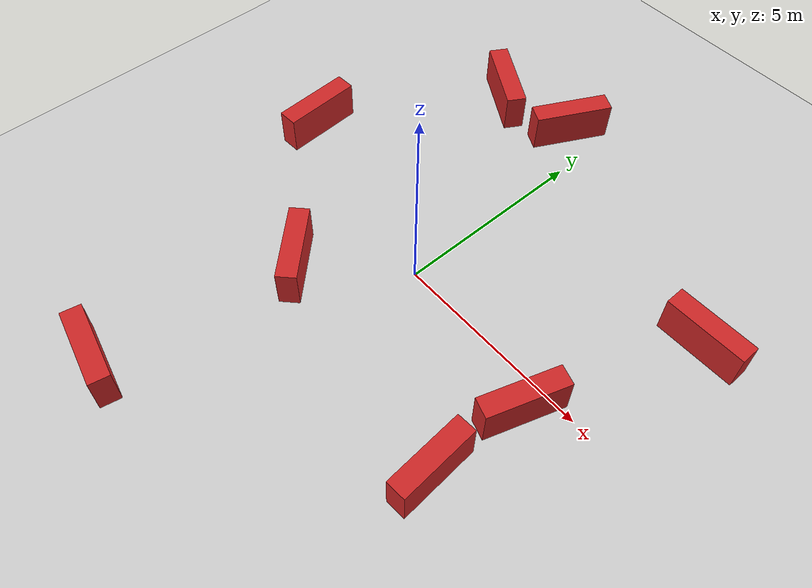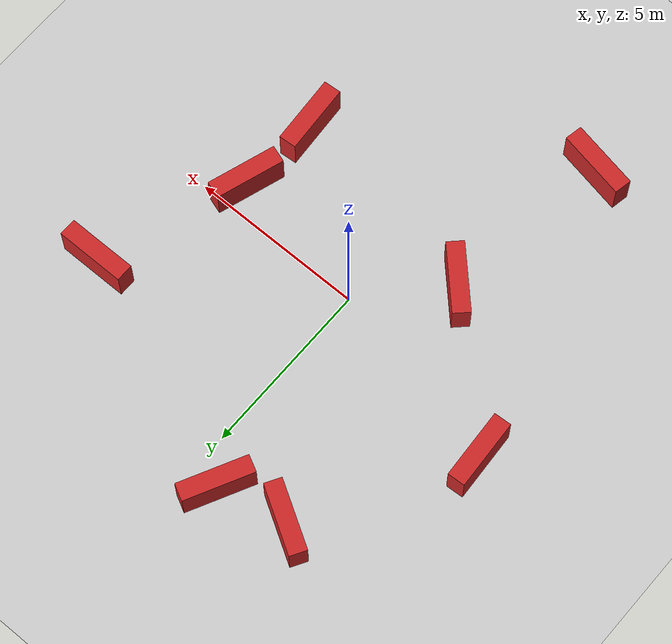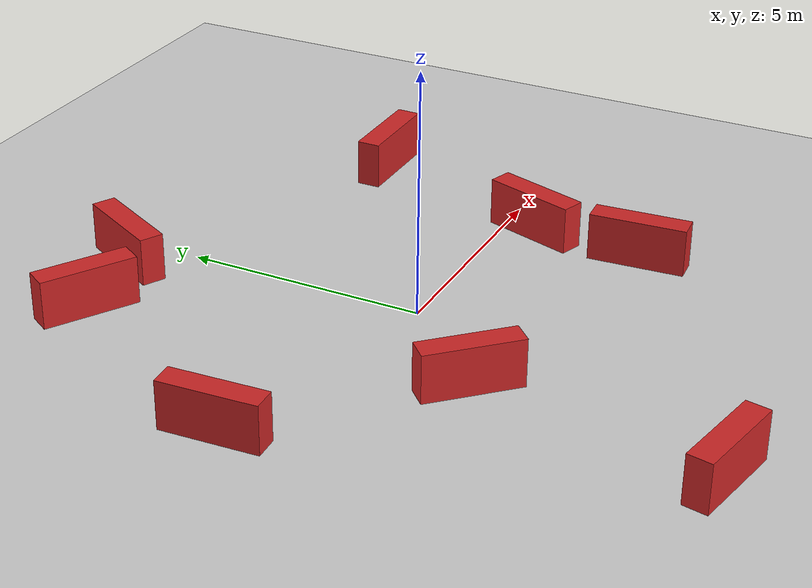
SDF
<sdf version="1.6">
 <world name="default">
  <light name="sun" type="directional">
   <pose>0 0 10 0 -0 0</pose>
   <diffuse>0.8 0.8 0.8 1</diffuse>
   <specular>0.2 0.2 0.2 1</specular>
   <attenuation>
    <range>1000</range>
    <constant>0.9</constant>
    <linear>0.01</linear>
    <quadratic>0.001</quadratic>
   </attenuation>
   <direction>-0.5 0.1 -0.9</direction>
   <spot><inner_angle>0</inner_angle><outer_angle>0</outer_angle><falloff>0</falloff></spot>
  </light>
  <model name="ground_plane">
   <static>1</static>
   <link name="link">
    <collision name="collision">
     <geometry><plane><normal>0 0 1</normal><size>100 100</size></plane></geometry>
     <surface>
      <contact><collide_bitmask>65535</collide_bitmask></contact>
      <friction><ode><mu>100</mu><mu2>50</mu2></ode></friction>
     </surface>
    </collision>
    <visual name="visual">
     <cast_shadows>0</cast_shadows>
     <geometry><plane><normal>0 0 1</normal><size>100 100</size></plane></geometry>
     <material>
      <script><uri>file://media/materials/scripts/gazebo.material</uri><name>Gazebo/Grey</name></script>
     </material>
    </visual>
   </link>
  </model>
  <gravity>0 0 -9.8</gravity>
  <magnetic_field>6e-06 2.3e-05 -4.2e-05</magnetic_field>
  <atmosphere type="adiabatic"/>
  <physics type="ode">
   <max_step_size>0.001</max_step_size>
   <real_time_factor>1</real_time_factor>
   <real_time_update_rate>1000</real_time_update_rate>
  </physics>
  <scene><ambient>0.4 0.4 0.4 1</ambient><background>0.7 0.7 0.7 1</background><shadows>1</shadows></scene>
  <spherical_coordinates>
   <surface_model>EARTH_WGS84</surface_model>
   <latitude_deg>0</latitude_deg>
   <longitude_deg>0</longitude_deg>
   <elevation>0</elevation>
   <heading_deg>0</heading_deg>
  </spherical_coordinates>
  <model name="Obs1">
   <static>1</static>
   <link name="chassis">
    <pose>0 0 0.5 0 -0 0</pose>
    <collision name="collision"><geometry><box><size>2 0.5 1</size></box></geometry></collision>
    <visual name="visual">
     <geometry><box><size>2 0.5 1</size></box></geometry>
     <material>
      <script><uri>file://media/materials/scripts/gazebo.material</uri><name>Gazebo/Red</name></script>
     </material>
    </visual>
    <velocity_decay><linear>0</linear><angular>0</angular></velocity_decay>
   </link>
   <pose>-2 -2 0 0 0 -0.8</pose>
  </model>
  <model name="brick_box_3x1x3">
   <static>1</static>
   <link name="chassis">
    <pose>0 0 0.5 0 -0 0</pose>
    <collision name="collision"><geometry><box><size>2 0.5 1</size></box></geometry></collision>
    <visual name="visual">
     <geometry><box><size>2 0.5 1</size></box></geometry>
     <material>
      <script><uri>file://media/materials/scripts/gazebo.material</uri><name>Gazebo/Red</name></script>
     </material>
    </visual>
    <velocity_decay><linear>0</linear><angular>0</angular></velocity_decay>
   </link>
   <pose>-5.36176 1.27326 0 0 -0 1.62759</pose>
  </model>
  <model name="brick_box_3x1x3_0">
   <static>1</static>
   <link name="chassis">
    <pose>0 0 0.5 0 -0 0</pose>
    <collision name="collision"><geometry><box><size>2 0.5 1</size></box></geometry></collision>
    <visual name="visual">
     <geometry><box><size>2 0.5 1</size></box></geometry>
     <material>
      <script><uri>file://media/materials/scripts/gazebo.material</uri><name>Gazebo/Red</name></script>
     </material>
    </visual>
    <velocity_decay><linear>0</linear><angular>0</angular></velocity_decay>
   </link>
   <pose>-2.68841 -6.93497 0 0 0 -0.195914</pose>
  </model>
  <model name="brick_box_3x1x3_1">
   <static>1</static>
   <link name="chassis">
    <pose>0 0 0.5 0 -0 0</pose>
    <collision name="collision"><geometry><box><size>2 0.5 1</size></box></geometry></collision>
    <visual name="visual">
     <geometry><box><size>2 0.5 1</size></box></geometry>
     <material>
      <script><uri>file://media/materials/scripts/gazebo.material</uri><name>Gazebo/Red</name></script>
     </material>
    </visual>
    <velocity_decay><linear>0</linear><angular>0</angular></velocity_decay>
   </link>
   <pose>-0.811126 6.10451 0 0 -0 1.09564</pose>
  </model>
  <model name="brick_box_3x1x3_2">
   <static>1</static>
   <link name="chassis">
    <pose>0 0 0.5 0 -0 0</pose>
    <collision name="collision"><geometry><box><size>2 0.5 1</size></box></geometry></collision>
    <visual name="visual">
     <geometry><box><size>2 0.5 1</size></box></geometry>
     <material>
      <script><uri>file://media/materials/scripts/gazebo.material</uri><name>Gazebo/Red</name></script>
     </material>
    </visual>
    <velocity_decay><linear>0</linear><angular>0</angular></velocity_decay>
   </link>
   <pose>5.62701 3.46564 0 0 -0 0</pose>
  </model>
  <model name="brick_box_3x1x3_3">
   <static>1</static>
   <link name="chassis">
    <pose>0 0 0.5 0 -0 0</pose>
    <collision name="collision"><geometry><box><size>2 0.5 1</size></box></geometry></collision>
    <visual name="visual">
     <geometry><box><size>2 0.5 1</size></box></geometry>
     <material>
      <script><uri>file://media/materials/scripts/gazebo.material</uri><name>Gazebo/Red</name></script>
     </material>
    </visual>
    <velocity_decay><linear>0</linear><angular>0</angular></velocity_decay>
   </link>
   <pose>3.93626 -3.06088 0 0 -0 1.63915</pose>
  </model>
  <model name="brick_box_3x1x3_4">
   <static>1</static>
   <link name="chassis">
    <pose>0 0 0.5 0 -0 0</pose>
    <collision name="collision"><geometry><box><size>2 0.5 1</size></box></geometry></collision>
    <visual name="visual">
     <geometry><box><size>2 0.5 1</size></box></geometry>
     <material>
      <script><uri>file://media/materials/scripts/gazebo.material</uri><name>Gazebo/Red</name></script>
     </material>
    </visual>
    <velocity_decay><linear>0</linear><angular>0</angular></velocity_decay>
   </link>
   <pose>4.13181 -0.706369 0 0 -0 1.25299</pose>
  </model>
  <model name="brick_box_3x1x3_5">
   <static>1</static>
   <link name="chassis">
    <pose>0 0 0.5 0 -0 0</pose>
    <collision name="collision"><geometry><box><size>2 0.5 1</size></box></geometry></collision>
    <visual name="visual">
     <geometry><box><size>2 0.5 1</size></box></geometry>
     <material>
      <script><uri>file://media/materials/scripts/gazebo.material</uri><name>Gazebo/Red</name></script>
     </material>
    </visual>
    <velocity_decay><linear>0</linear><angular>0</angular></velocity_decay>
   </link>
   <pose>-2.80354 5.74242 0 0 0 -0.536725</pose>
  </model>
 </world>
</sdf>
